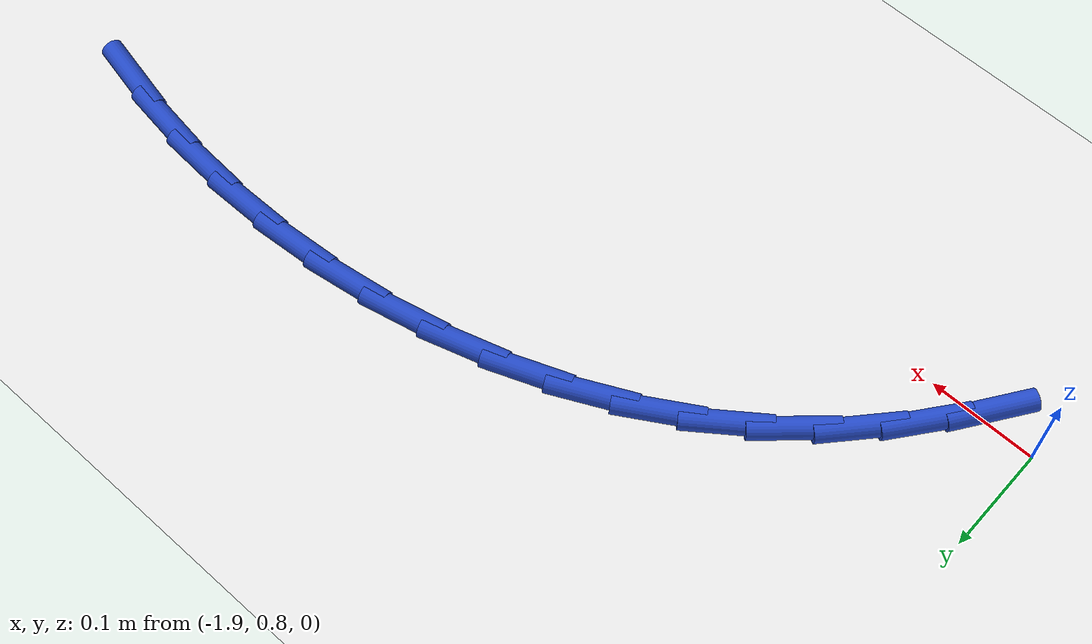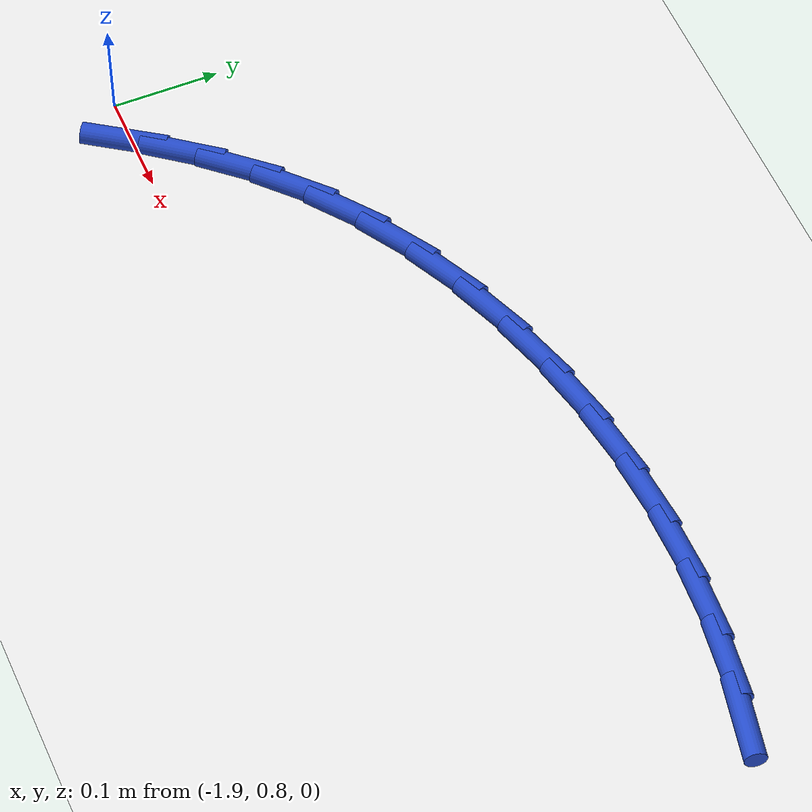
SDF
<sdf version="1.6">
 <world name="default">
  <model name="ground_plane">
   <static>1</static>
   <link name="link">
    <collision name="collision">
     <geometry><plane><normal>0 0 1</normal><size>100 100</size></plane></geometry>
     <surface><friction><ode><mu>100</mu><mu2>50</mu2></ode></friction></surface>
    </collision>
    <visual name="visual">
     <cast_shadows>0</cast_shadows>
     <geometry><plane><normal>0 0 1</normal><size>100 100</size></plane></geometry>
     <material>
      <script><uri>file://media/materials/scripts/gazebo.material</uri><name>Gazebo/WhiteGlow</name></script>
     </material>
    </visual>
   </link>
  </model>
  <model name="line">
   <link name="link_29">
    <pose>-1.081228656738833 1.0429842485555092 0.01 0 1.57 -0.20719291275896937</pose>
    <collision name="collision">
     <geometry><cylinder><radius>0.01</radius><length>0.08</length></cylinder></geometry>
    </collision>
    <visual name="visual">
     <material>
      <script><name>Gazebo/Blue</name><uri>file://media/materials/scripts/gazebo.material</uri></script>
     </material>
     <geometry><cylinder><radius>0.01</radius><length>0.08</length></cylinder></geometry>
    </visual>
   </link>
   <link name="link_30">
    <pose>-1.137169974070093 1.0547436493239701 0.01 0 1.57 -0.1320068040217935</pose>
    <collision name="collision">
     <geometry><cylinder><radius>0.01</radius><length>0.08</length></cylinder></geometry>
    </collision>
    <visual name="visual">
     <material>
      <script><name>Gazebo/Blue</name><uri>file://media/materials/scripts/gazebo.material</uri></script>
     </material>
     <geometry><cylinder><radius>0.01</radius><length>0.08</length></cylinder></geometry>
    </visual>
   </link>
   <link name="link_31">
    <pose>-1.194660337400962 1.0623771600466105 0.01 0 1.57 -0.0600294976676549</pose>
    <collision name="collision">
     <geometry><cylinder><radius>0.01</radius><length>0.08</length></cylinder></geometry>
    </collision>
    <visual name="visual">
     <material>
      <script><name>Gazebo/Blue</name><uri>file://media/materials/scripts/gazebo.material</uri></script>
     </material>
     <geometry><cylinder><radius>0.01</radius><length>0.08</length></cylinder></geometry>
    </visual>
   </link>
   <link name="link_32">
    <pose>-1.2531792783440563 1.0658942483475482 0.01 0 1.57 0.009992822965620126</pose>
    <collision name="collision">
     <geometry><cylinder><radius>0.01</radius><length>0.08</length></cylinder></geometry>
    </collision>
    <visual name="visual">
     <material>
      <script><name>Gazebo/Blue</name><uri>file://media/materials/scripts/gazebo.material</uri></script>
     </material>
     <geometry><cylinder><radius>0.01</radius><length>0.08</length></cylinder></geometry>
    </visual>
   </link>
   <link name="link_33">
    <pose>-1.3122063285119905 1.0653043818509031 0.01 0 1.57 0.07926049944688586</pose>
    <collision name="collision">
     <geometry><cylinder><radius>0.01</radius><length>0.08</length></cylinder></geometry>
    </collision>
    <visual name="visual">
     <material>
      <script><name>Gazebo/Blue</name><uri>file://media/materials/scripts/gazebo.material</uri></script>
     </material>
     <geometry><cylinder><radius>0.01</radius><length>0.08</length></cylinder></geometry>
    </visual>
   </link>
   <link name="link_34">
    <pose>-1.3712210195173793 1.0606170281807927 0.01 0 1.57 0.14894168332588137</pose>
    <collision name="collision">
     <geometry><cylinder><radius>0.01</radius><length>0.08</length></cylinder></geometry>
    </collision>
    <visual name="visual">
     <material>
      <script><name>Gazebo/Blue</name><uri>file://media/materials/scripts/gazebo.material</uri></script>
     </material>
     <geometry><cylinder><radius>0.01</radius><length>0.08</length></cylinder></geometry>
    </visual>
   </link>
   <link name="link_35">
    <pose>-1.4297028829728384 1.0518416549613367 0.01 0 1.57 0.22019538176055012</pose>
    <collision name="collision">
     <geometry><cylinder><radius>0.01</radius><length>0.08</length></cylinder></geometry>
    </collision>
    <visual name="visual">
     <material>
      <script><name>Gazebo/Blue</name><uri>file://media/materials/scripts/gazebo.material</uri></script>
     </material>
     <geometry><cylinder><radius>0.01</radius><length>0.08</length></cylinder></geometry>
    </visual>
   </link>
   <link name="link_36">
    <pose>-1.4871314504909816 1.0389877298166532 0.01 0 1.57 0.2941904791831673</pose>
    <collision name="collision">
     <geometry><cylinder><radius>0.01</radius><length>0.08</length></cylinder></geometry>
    </collision>
    <visual name="visual">
     <material>
      <script><name>Gazebo/Blue</name><uri>file://media/materials/scripts/gazebo.material</uri></script>
     </material>
     <geometry><cylinder><radius>0.01</radius><length>0.08</length></cylinder></geometry>
    </visual>
   </link>
   <link name="link_37">
    <pose>-1.5429862536844259 1.0220647203708615 0.01 0 1.57 0.3721144311994897</pose>
    <collision name="collision">
     <geometry><cylinder><radius>0.01</radius><length>0.08</length></cylinder></geometry>
    </collision>
    <visual name="visual">
     <material>
      <script><name>Gazebo/Blue</name><uri>file://media/materials/scripts/gazebo.material</uri></script>
     </material>
     <geometry><cylinder><radius>0.01</radius><length>0.08</length></cylinder></geometry>
    </visual>
   </link>
   <link name="link_38">
    <pose>-1.5967468241657845 1.0010820942480796 0.01 0 1.57 0.4551630440591739</pose>
    <collision name="collision">
     <geometry><cylinder><radius>0.01</radius><length>0.08</length></cylinder></geometry>
    </collision>
    <visual name="visual">
     <material>
      <script><name>Gazebo/Blue</name><uri>file://media/materials/scripts/gazebo.material</uri></script>
     </material>
     <geometry><cylinder><radius>0.01</radius><length>0.08</length></cylinder></geometry>
    </visual>
   </link>
   <link name="link_39">
    <pose>-1.6478926935476739 0.9760493190724269 0.01 0 1.57 0.544499190263185</pose>
    <collision name="collision">
     <geometry><cylinder><radius>0.01</radius><length>0.08</length></cylinder></geometry>
    </collision>
    <visual name="visual">
     <material>
      <script><name>Gazebo/Blue</name><uri>file://media/materials/scripts/gazebo.material</uri></script>
     </material>
     <geometry><cylinder><radius>0.01</radius><length>0.08</length></cylinder></geometry>
    </visual>
   </link>
   <link name="link_40">
    <pose>-1.695903393442708 0.9469758624680218 0.01 0 1.57 0.6411649208139578</pose>
    <collision name="collision">
     <geometry><cylinder><radius>0.01</radius><length>0.08</length></cylinder></geometry>
    </collision>
    <visual name="visual">
     <material>
      <script><name>Gazebo/Blue</name><uri>file://media/materials/scripts/gazebo.material</uri></script>
     </material>
     <geometry><cylinder><radius>0.01</radius><length>0.08</length></cylinder></geometry>
    </visual>
   </link>
   <link name="link_41">
    <pose>-1.7402584554635023 0.9138711920589828 0.01 0 1.57 0.7444286227879641</pose>
    <collision name="collision">
     <geometry><cylinder><radius>0.01</radius><length>0.08</length></cylinder></geometry>
    </collision>
    <visual name="visual">
     <material>
      <script><name>Gazebo/Blue</name><uri>file://media/materials/scripts/gazebo.material</uri></script>
     </material>
     <geometry><cylinder><radius>0.01</radius><length>0.08</length></cylinder></geometry>
    </visual>
   </link>
   <link name="link_42">
    <pose>-1.7805212634098009 0.876779343218852 0.01 0 1.57 0.838944537744713</pose>
    <collision name="collision">
     <geometry><cylinder><radius>0.01</radius><length>0.08</length></cylinder></geometry>
    </collision>
    <visual name="visual">
     <material>
      <script><name>Gazebo/Blue</name><uri>file://media/materials/scripts/gazebo.material</uri></script>
     </material>
     <geometry><cylinder><radius>0.01</radius><length>0.08</length></cylinder></geometry>
    </visual>
   </link>
   <link name="link_43">
    <pose>-1.8170769669018458 0.8360831211963491 0.01 0 1.57 0.9141818581094124</pose>
    <collision name="collision">
     <geometry><cylinder><radius>0.01</radius><length>0.08</length></cylinder></geometry>
    </collision>
    <visual name="visual">
     <material>
      <script><name>Gazebo/Blue</name><uri>file://media/materials/scripts/gazebo.material</uri></script>
     </material>
     <geometry><cylinder><radius>0.01</radius><length>0.08</length></cylinder></geometry>
    </visual>
   </link>
   <link name="link_44">
    <pose>-1.8507762510543813 0.7923572465005161 0.01 0 1.57 0.9692289622101381</pose>
    <collision name="collision">
     <geometry><cylinder><radius>0.01</radius><length>0.08</length></cylinder></geometry>
    </collision>
    <visual name="visual">
     <material>
      <script><name>Gazebo/Blue</name><uri>file://media/materials/scripts/gazebo.material</uri></script>
     </material>
     <geometry><cylinder><radius>0.01</radius><length>0.08</length></cylinder></geometry>
    </visual>
   </link>
  </model>
 </world>
</sdf>
